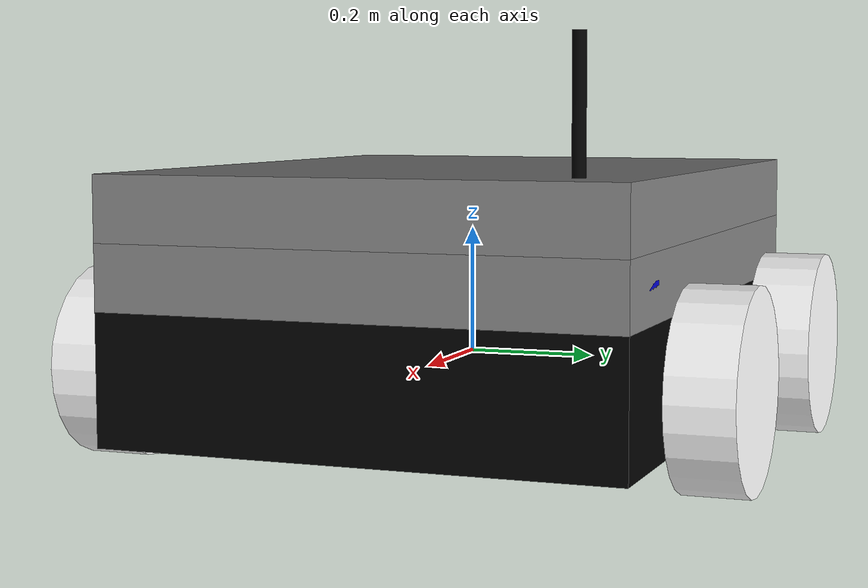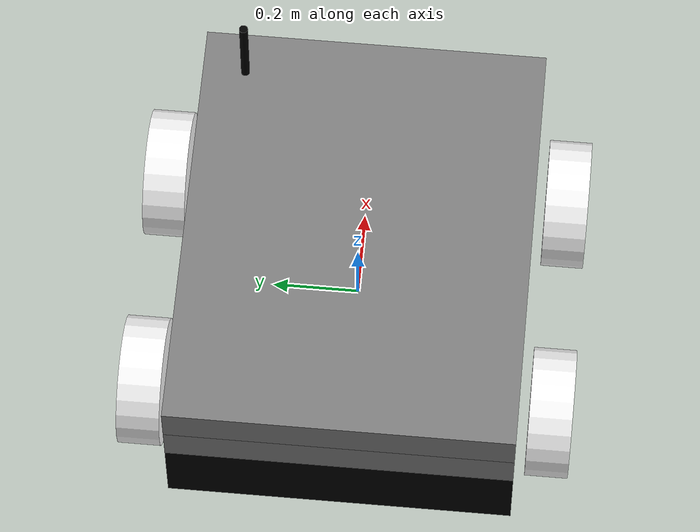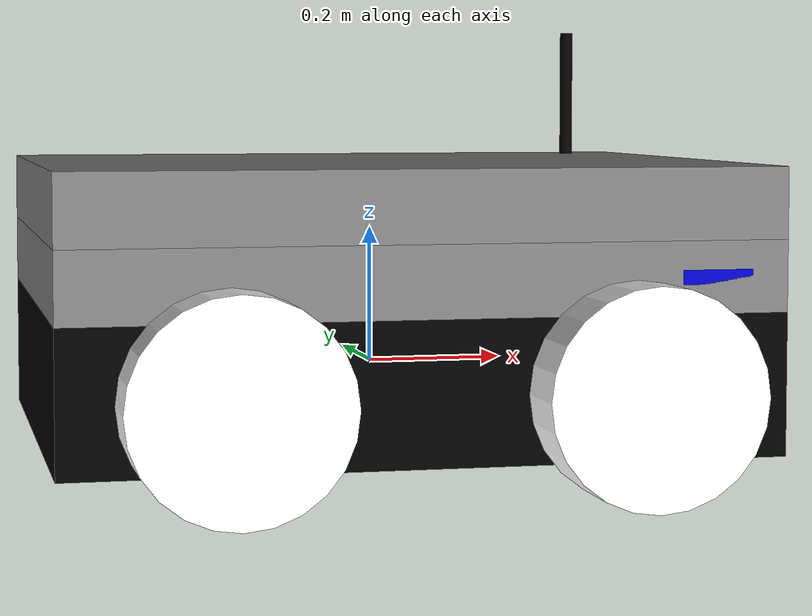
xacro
<robot name="simple_robot" xmlns:xacro="http://ros.org/wiki/xacro">

    <!-- definition properties -->

    <xacro:property name="pi" value="3.1415" />

    <xacro:property name="width" value="1" />
    <xacro:property name="height" value="0.8" />
    <xacro:property name="depth" value="0.2" />
    <xacro:property name="n_lvl" value="2" />

    <xacro:property name="free_space" value="0.001" />

    <xacro:property name="level_depth" value="0.1" />

    <xacro:property name="headlight_front_width" value="0.05" />
    <xacro:property name="headlight_front_height" value="0.2" />
    <xacro:property name="headlight_front_depth" value="0.2" />
    <xacro:property name="headlight_front_angle" value="${pi/8}" />
    <xacro:property name="headlight_front_base_width" value="0.10"/>

    <xacro:property name="headlight_bottom_width" value="0.05" />
    <xacro:property name="headlight_bottom_height" value="0.5" />
    <xacro:property name="headlight_bottom_depth" value="0.05" />

    <xacro:property name="wheel_len" value="0.1"/>
    <xacro:property name="wheel_rad" value="0.15"/>

    <xacro:property name="wheel_len" value="0.1"/>
    <xacro:property name="wheel_rad" value="0.15"/>

    <xacro:property name="fork_n" value="5"/>
    <xacro:property name="fork_len" value="0.25"/>
    <xacro:property name="fork_rad" value="0.02"/>
    <xacro:property name="fork_base_width" value="0.10"/>

    <xacro:property name="antenna_len" value="0.2"/>
    <xacro:property name="antenna_rad" value="0.01"/>
    <xacro:property name="antenna_space" value="0.1"/>

    <xacro:property name="disc_len" value="0.02"/>
    <xacro:property name="disc_rad" value="${width/3}"/>
    <xacro:property name="disc_depth" value="0.05"/>
    <xacro:property name="disc_scale" value="0.05"/>

    <!-- colors definitions -->

    <material name="blue">
    <color rgba="0 0 0.8 1"/>
    </material>

    <material name="black">
    <color rgba="0 0 0 1"/>
    </material>

    <material name="gray">
    <color rgba="0.5 0.5 0.5 1"/>
    </material>

    <material name="white">
    <color rgba="1 1 1 1"/>
    </material>

    <material name="red">
    <color rgba="1 0 0 1"/>
    </material>

    <material name="yellow">
    <color rgba="1 1 0 1"/>
    </material>

    <!-- macros definition -->

    <!-- macro: default_inertial -->

    <xacro:macro name="default_inertial" params="mass">
        <inertial>
            <origin xyz="0 0 0" rpy="0 0 0"/>
            <mass value="${mass}" />
            <inertia ixx="1.0" ixy="0.0" ixz="0.0" iyy="1.0" iyz="0.0" izz="1.0" />
        </inertial>
    </xacro:macro>

    <!-- macro: level -->

    <xacro:macro name="level" params="lvl color">
        <link name="level_${lvl}_link">
            <visual>
                <geometry>
                    <box size="${width} ${height} ${level_depth}" />
                </geometry>
                <material name="${color}"/>
            </visual>
            <collision>
                <geometry>
                    <box size="${width} ${height} ${level_depth}" />
                </geometry>
            </collision>
            <xacro:default_inertial mass="5"/>
        </link>

        <joint name="level_${lvl}_joint" type="fixed">
            <parent link="base_link"/>
            <child link="level_${lvl}_link"/>
            <origin xyz="0 0 ${level_depth/2 + depth/2 + lvl*level_depth}"/>
        </joint>

    </xacro:macro>

    <!-- macro: headlight_front -->

    <xacro:macro name="headlight_front" params="prefix reflect">
        <link name="headlight_front_${prefix}_link">
            <visual>
                <geometry>
                        <box size="${headlight_front_width} ${headlight_front_height} ${headlight_front_depth}" />
                </geometry>
                <material name="yellow"/>
                <origin rpy="${reflect * headlight_front_angle} 0 0" xyz="0 0 0"/>
            </visual>
            <collision>
                <geometry>
                    <box size="${headlight_front_width} ${headlight_front_height} ${headlight_front_depth}" />
                </geometry>
            </collision>
            <xacro:default_inertial mass="0.05"/>
        </link>

         <joint name="headlight_front_${prefix}_joint" type="fixed">
            <parent link="headlight_front_base_link"/>
            <child link="headlight_front_${prefix}_link"/>
            <origin xyz="${(headlight_front_base_width + headlight_front_width )/2} ${reflect * headlight_front_height} 0.0"/>
        </joint>

        <gazebo reference="headlight_front_${prefix}_link">
            <material>Gazebo/YellowGlow </material>
        </gazebo>

    </xacro:macro>

    <!-- macro: headlight_back -->

    <xacro:macro name="headlight_back" params="lvl">
        <link name="headlight_back_${lvl}_link">
            <visual>
                <geometry>
                    <box size="${headlight_bottom_width} ${headlight_bottom_height} ${headlight_bottom_depth}" />
                </geometry>
                <material name="red"/>
                <origin rpy="0 0 0" xyz="0 0 0"/>
            </visual>
            <collision>
                <geometry>
                    <box size="${headlight_bottom_width} ${headlight_bottom_height} ${headlight_bottom_depth}" />
                </geometry>
            </collision>
            <xacro:default_inertial mass="0.05"/>
        </link>

        <joint name="headlight_back_${lvl}_joint" type="prismatic">
            <axis rpy="0 0 0" xyz="1 0 0"/>
            <parent link="level_${lvl}_link"/>
            <child link="headlight_back_${lvl}_link"/>
            <limit effort="10" lower="${-1 * headlight_bottom_width}" upper="0" velocity="0.5"/>
            <origin xyz="${-1*(width - headlight_bottom_width)/2 + free_space} 0.0 0.0"/>
        </joint>

        <gazebo reference="headlight_back_${lvl}_link">
            <material>Gazebo/Red</material>
        </gazebo>

        <transmission name="headlight_back_${lvl}_trans">
            <type>transmission_interface/SimpleTransmission</type>
            <actuator name="headlight_back_${lvl}_motor">
                <mechanicalReduction>1</mechanicalReduction>
            </actuator>
            <joint name="headlight_back_${lvl}_joint">
                <hardwareInterface>PositionJointInterface</hardwareInterface>
            </joint>
        </transmission>

    </xacro:macro>

    <!-- macro: fork -->

    <xacro:macro name="fork" params="lvl">
        <link name="fork_${lvl}_link">
            <visual>
                <geometry>
                        <cylinder length="${fork_len}" radius="${fork_rad}"/>
                </geometry>
                <material name="red"/>
            </visual>
            <collision>
                <geometry>
                    <cylinder length="${fork_len}" radius="${fork_rad}"/>
                </geometry>
            </collision>
            <xacro:default_inertial mass="0.05"/>
        </link>

         <joint name="fork_${lvl}_joint" type="fixed">
            <parent link="fork_base_link"/>
            <child link="fork_${lvl}_link"/>
            <origin rpy="0 ${pi/2} 0" xyz="${(fork_len+fork_base_width)/2} ${(height * (lvl+1-1/2)/fork_n) -height/2} 0.0"/>
        </joint>

        <gazebo reference="fork_${lvl}_link">
            <material>Gazebo/Red</material>
        </gazebo>

    </xacro:macro>

    <!-- macro: wheel -->

    <xacro:macro name="wheel" params="side updown reflect_side reflect_updown">
        <link name="wheel_${side}_${updown}_link">
            <visual>
                <geometry>
                    <cylinder length="${wheel_len}" radius="${wheel_rad}"/>
                </geometry>
                <material name="white"/>
                <origin rpy="${pi/2} 0 0" xyz="0 0 0"/>
            </visual>
            <collision>
                <geometry>
                    <cylinder length="${wheel_len}" radius="${wheel_rad}"/>
                </geometry>
                <origin rpy="${pi/2} 0 0" xyz="0 0 0"/>
            </collision>
            <xacro:default_inertial mass="1"/>
        </link>

         <joint name="wheel_${side}_${updown}_joint" type="continuous">
            <axis rpy="0 0 0" xyz="0 1 0"/>
            <parent link="base_link"/>
            <child link="wheel_${side}_${updown}_link"/>
            <origin xyz="${reflect_updown*(width + wheel_len)/4} ${reflect_side*(height + wheel_rad)/2} 0.0"/>
        </joint>

        <gazebo reference="wheel_${side}_${updown}_link">
            <mu1 value="200.0"/>
            <mu2 value="100.0"/>
            <kp value="10000000.0" />
            <kd value="1.0" />
            <material>Gazebo/Grey</material>
        </gazebo>

        <transmission name="wheel_${side}_${updown}_trans">
            <type>transmission_interface/SimpleTransmission</type>
            <actuator name="wheel_${side}_${updown}_motor">
                <mechanicalReduction>1</mechanicalReduction>
            </actuator>
            <joint name="wheel_${side}_${updown}_joint">
                <hardwareInterface>VelocityJointInterface</hardwareInterface>
            </joint>
        </transmission>
    </xacro:macro>

    <!-- definition links -->

    <!-- link: base_link -->

    <link name="base_link">
        <visual>
            <geometry>
                <box size="${width} ${height} ${depth}" />
            </geometry>
            <material name="black"/>
        </visual>
        <collision>
            <geometry>
                    <box size="${width} ${height} ${depth}" />
            </geometry>
        </collision>
        <xacro:default_inertial mass="10"/>
    </link>

    <gazebo reference="base_link">
        <material>Gazebo/DarkGrey</material>
    </gazebo>

    <!-- links: level -->

    <xacro:level lvl="0" color="gray"/>
    <xacro:level lvl="1" color="gray"/>

    <!-- links: headlight_front -->

    <xacro:headlight_front prefix="left" reflect="1"/>
    <xacro:headlight_front prefix="right" reflect="-1"/>

    <link name="headlight_front_base_link">
        <visual>
        <geometry>
                <box size="${headlight_front_base_width} ${height} ${depth/10}"/>
        </geometry>
        <material name="blue"/>
        </visual>
        <collision>
                <geometry>
                    <box size="${headlight_front_base_width} ${height} ${depth/10}"/>
                </geometry>
        </collision>
        <xacro:default_inertial mass="1"/>
    </link>

    <joint name="headlight_front_base_joint" type="prismatic">
        <axis rpy="0 0 0" xyz="1 0 0"/>
        <parent link="level_0_link"/>
        <child link="headlight_front_base_link"/>
        <limit effort="10" lower="0" upper="${headlight_front_width}" velocity="0.5"/>
        <origin xyz="${(width - headlight_front_base_width)/2 - headlight_front_width - free_space} 0.0 0.0"/>
    </joint>

    <transmission name="headlight_front_base_trans">
        <type>transmission_interface/SimpleTransmission</type>
        <actuator name="headlight_front_base_motor">
            <mechanicalReduction>1</mechanicalReduction>
        </actuator>
        <joint name="headlight_front_base_joint">
            <hardwareInterface>PositionJointInterface</hardwareInterface>
        </joint>
    </transmission>

    <!-- links: headlight_back -->

    <xacro:headlight_back lvl="0"/>
    <xacro:headlight_back lvl="1"/>

    <!-- links: beacon -->

    <gazebo reference="beacon_base_link">
            <material>Gazebo/Black</material>
    </gazebo>

    <!-- links: wheel -->

    <xacro:wheel side="left" updown="top" reflect_side="1" reflect_updown="1"/>
    <xacro:wheel side="right" updown="top" reflect_side="-1" reflect_updown="1"/>
    <xacro:wheel side="left" updown="bottom" reflect_side="1" reflect_updown="-1"/>
    <xacro:wheel side="right" updown="bottom" reflect_side="-1" reflect_updown="-1"/>

    <!-- links: fork -->

    <link name="fork_base_link">
        <visual>
            <geometry>
                <box size="${fork_base_width - free_space} ${height - free_space} ${depth/10}"/>
            </geometry>
        <material name="blue"/>
        </visual>
        <collision>
            <geometry>
                  <box size="${fork_base_width - free_space} ${height - free_space} ${depth/10}"/>
            </geometry>
        </collision>
        <xacro:default_inertial mass="1"/>
    </link>

    <transmission name="fork_base_trans">
        <type>transmission_interface/SimpleTransmission</type>
        <actuator name="fork_base_motor">
            <mechanicalReduction>1</mechanicalReduction>
        </actuator>
        <joint name="fork_base_joint">
        <hardwareInterface>PositionJointInterface</hardwareInterface>
        </joint>
    </transmission>

    <joint name="fork_base_joint" type="prismatic">
        <axis rpy="0 0 0" xyz="1 0 0"/>
        <parent link="base_link"/>
        <child link="fork_base_link"/>
        <limit effort="10" lower="0" upper="${fork_len}" velocity="0.5"/>
        <origin xyz="${(width - fork_base_width)/2 - fork_len - free_space} 0 0.0"/>
    </joint>

    <xacro:fork lvl="0"/>
    <xacro:fork lvl="1"/>
    <xacro:fork lvl="2"/>
    <xacro:fork lvl="3"/>
    <xacro:fork lvl="4"/>

    <!-- links: beacon -->

    <link name="beacon_base_link">
        <visual>
        <geometry>
                <cylinder length="0.05" radius="0.25"/>
        </geometry>
        <material name="blue"/>
        </visual>
        <collision>
                <geometry>
                    <cylinder length="0.05" radius="0.25"/>
                </geometry>
        </collision>
        <xacro:default_inertial mass="1"/>
    </link>

    <gazebo reference="beacon_base_link">
            <material>Gazebo/Black </material>
    </gazebo>

    <joint name="base_beacon_trans_joint" type="prismatic">
        <axis rpy="0 0 0" xyz="0 0 1"/>
        <parent link="base_link"/>
        <child link="beacon_base_link"/>
        <limit effort="1000.0" lower="0" upper="${depth/2 + n_lvl * level_depth}" velocity="0.5"/>
        <origin rpy="0 0 0" xyz="0 0 0"/>
    </joint>

    <transmission name="base_beacon_trans_trans">
        <type>transmission_interface/SimpleTransmission</type>
        <actuator name="$base_beacon_trans_motor">
            <mechanicalReduction>1</mechanicalReduction>
        </actuator>
        <joint name="base_beacon_trans_joint">
        <hardwareInterface>PositionJointInterface</hardwareInterface>
        </joint>
    </transmission>

    <link name="beacon_link">
        <visual>
        <geometry>
                <cylinder length="0.2" radius="0.2"/>
        </geometry>
        <material name="blue"/>
        </visual>
        <collision>
                <geometry>
                    <cylinder length="0.2" radius="0.2"/>
                </geometry>
        </collision>
        <xacro:default_inertial mass="1"/>

    </link>

    <gazebo reference="beacon_link">
            <material>Gazebo/RedTransparent </material>
    </gazebo>

    <joint name="base_beacon_rot_joint" type="continuous">
        <axis rpy="0 0 0" xyz="0 0 1"/>
        <parent link="beacon_base_link"/>
        <child link="beacon_link"/>
        <limit effort="30" velocity="100"/>
        <origin rpy="0 0 0" xyz="0 0 0.1"/>
    </joint>

    <transmission name="base_beacon_rot_trans">
        <type>transmission_interface/SimpleTransmission</type>
        <actuator name="$base_beacon_rot_motor">
            <mechanicalReduction>1</mechanicalReduction>
        </actuator>
        <joint name="base_beacon_rot_joint">
        <hardwareInterface>VelocityJointInterface</hardwareInterface>
        </joint>
    </transmission>

    <link name="beacon_light_link">
        <visual>
        <geometry>
                <box size="0.05 0.05 0.05"/>
        </geometry>
        <material name="yellow"/>
        </visual>
        <collision>
                <geometry>
                    <box size="0.05 0.05 0.05"/>
                </geometry>
        </collision>
        <xacro:default_inertial mass="1"/>
    </link>

    <gazebo reference="beacon_light_link">
            <material>Gazebo/Yellow </material>
    </gazebo>

    <joint name="beacon_light_joint" type="fixed">
        <parent link="beacon_link"/>
        <child link="beacon_light_link"/>
        <origin rpy="0 0 0" xyz="0.2 0 0"/>
    </joint>

    <!-- link: antenna -->

    <link name="antenna_link">
        <visual>
            <geometry>
                <cylinder length="${antenna_len}" radius="${antenna_rad}"/>
            </geometry>
            <origin rpy="0 0 0" xyz="0 0 ${ antenna_len/2}"/>
        <material name="black"/>
        </visual>
        <collision>
            <geometry>
                <cylinder length="${antenna_len}" radius="${antenna_rad}"/>
            </geometry>
            <origin rpy="0 0 0" xyz="0 0 ${ antenna_len/2}"/>
        </collision>
        <xacro:default_inertial mass="0.05"/>
    </link>

    <gazebo reference="antenna_link">
            <material>Gazebo/Yellow </material>
    </gazebo>

    <joint name="antenna_joint" type="fixed">
        <parent link="level_1_link"/>
        <child link="antenna_link"/>
        <origin rpy="0 0 0" xyz="${width/2 - antenna_space} ${height/2  - antenna_space} ${level_depth/2}"/>
    </joint>

    <!-- links: disk -->

    <link name="disc_base_link">
        <visual>
            <geometry>
                <box size="${fork_base_width - free_space} ${height - free_space} ${depth/10}"/>
            </geometry>
        <material name="blue"/>
        </visual>
        <collision>
            <geometry>
                  <box size="${fork_base_width - free_space} ${height - free_space} ${depth/10}"/>
            </geometry>
        </collision>
        <xacro:default_inertial mass="1"/>
    </link>

    <transmission name="disc_base_trans">
        <type>transmission_interface/SimpleTransmission</type>
        <actuator name="disc_base_motor">
            <mechanicalReduction>1</mechanicalReduction>
        </actuator>
        <joint name="disc_base_joint">
        <hardwareInterface>PositionJointInterface</hardwareInterface>
        </joint>
    </transmission>

    <joint name="disc_base_joint" type="prismatic">
        <axis rpy="0 0 0" xyz="1 0 0"/>
        <parent link="base_link"/>
        <child link="disc_base_link"/>
        <limit effort="10" lower="0" upper="${disc_rad}" velocity="0.5"/>
        <origin xyz="${(width)/2 - disc_rad - free_space - fork_base_width/2} 0 ${-1*disc_depth}"/>
    </joint>

    <link name="disc_link">
        <visual>
            <geometry>
                <mesh filename="package://pouco2000_ros_gazebo/meshes/disc/disc.STL" scale="${disc_scale} ${disc_scale} ${disc_scale}"/>
            </geometry>
            <origin rpy="0 0 0" xyz="-0.3 -0.3 0"/>
        <material name="blue"/>
        </visual>
        <collision>
            <geometry>
                <mesh filename="package://pouco2000_ros_gazebo/meshes/disc/disc.STL" scale="${disc_scale} ${disc_scale} ${disc_scale}"/>
            </geometry>
        </collision>
        <xacro:default_inertial mass="1"/>
    </link>

    <transmission name="disc_trans">
        <type>transmission_interface/SimpleTransmission</type>
        <actuator name="disc_motor">
            <mechanicalReduction>1</mechanicalReduction>
        </actuator>
        <joint name="disc_joint">
        <hardwareInterface>VelocityJointInterface</hardwareInterface>
        </joint>
    </transmission>

    <joint name="disc_joint" type="continuous">
        <parent link="disc_base_link"/>
        <child link="disc_link"/>
        <axis rpy="0 0 0" xyz="0 0 1"/>
    </joint>

    <gazebo reference="disc_link">
            <material>
              Gazebo/Grey
            </material>
    </gazebo>

    <!-- gazebo plugin -->

    <gazebo>
        <plugin name="gazebo_ros_control" filename="libgazebo_ros_control.so">
        <robotNamespace>/</robotNamespace>
        </plugin>
    </gazebo>

</robot>
